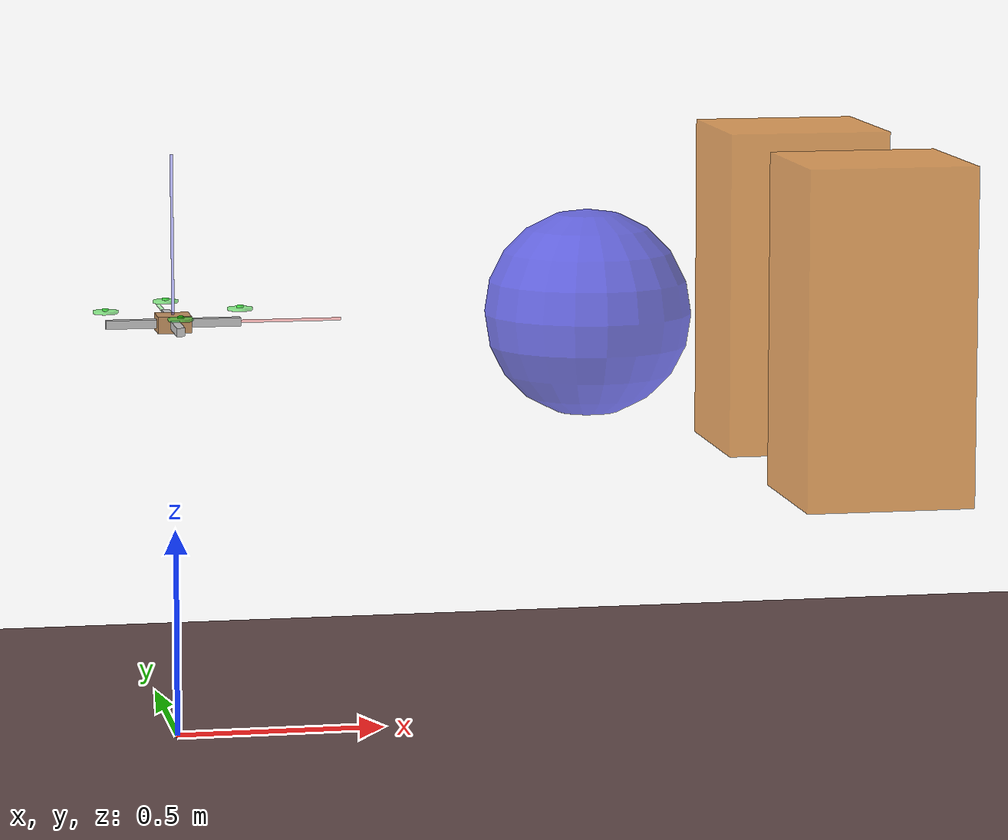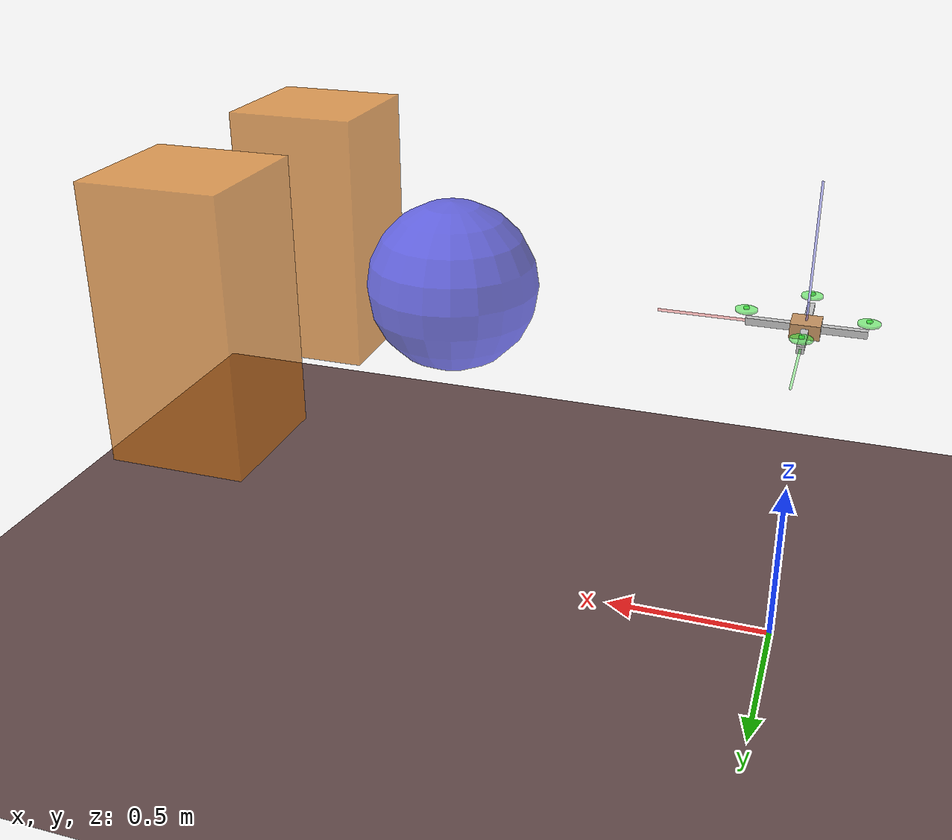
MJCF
<mujoco model="drone_3d_free_obs">
  <compiler angle="degree" inertiafromgeom="true" coordinate="local"/>
  <option timestep="0.01" gravity="0 0 -9.81" density="1" viscosity="1e-5" integrator="RK4"/>

  <default>
    <joint damping="0.02" stiffness="0.001" limited="false"/>
    <geom condim="3" density="200" friction="1 0.5 0.5" margin="0.01" rgba="0.8 0.6 0.4 1"/>
  </default>

  <asset>
    <texture builtin="gradient" type="skybox" height="100" width="100" rgb1="1 1 1" rgb2="0.6 0.8 1"/>
    <texture name="texplane" builtin="checker" height="100" width="100" rgb1="0.7 0.7 0.7" rgb2="0.9 0.9 0.9" type="2d"/>
    <material name="MatPlane" reflectance="0.3" shininess="1" specular="0.5" texrepeat="5 5" texture="texplane"/>
    <material name="MatDrone" specular="0.5" shininess="1" rgba="0.8 0.2 0.2 1"/>
  </asset>

  <worldbody>
    <light cutoff="100" diffuse="1 1 1" dir="-0 0 -1.3" directional="true" exponent="1"
           pos="0 0 1.3" specular=".1 .1 .1"/>
    <geom material="MatPlane" name="floor" pos="0 0 0" rgba="0.4 0.3 0.3 1" size="5 5 0.2" type="plane"/>

    <!-- Obstáculos (solo visuales) -->
    <!-- Esfera -->
    <geom name="obs_sphere_0" type="sphere" pos="1.0 0.0 1.0" size="0.25"
          rgba="0.2 0.2 0.9 0.7" contype="0" conaffinity="0"/>

    <!-- Caja derecha -->
    <geom name="obs_box_0" type="box" pos="1.6 0.4 1.0" size="0.20 0.20 0.40"
          rgba="0.9 0.5 0.1 0.7" contype="0" conaffinity="0"/>

    <!-- Caja izquierda -->
    <geom name="obs_box_1" type="box" pos="1.6 -0.4 1.0" size="0.20 0.20 0.40"
          rgba="0.9 0.5 0.1 0.7" contype="0" conaffinity="0"/>

    <!-- 🚁 DRON -->
    <body name="drone_3d" pos="0 0 1.0">
      <joint name="drone_free" type="free"/>

      <geom name="drone_body" type="box" size="0.04 0.04 0.02" material="MatDrone"
            mass="0.30" contype="0" conaffinity="0"/>

      <!-- Site en el centro del cuerpo para aplicar wrench (u1,u2,u3,u4) -->
      <site name="com_site" pos="0 0 0" size="0.005" rgba="1 0 0 1"/>

      <geom name="arm_x_pos" type="box" pos=" 0.10 0 0" size="0.06 0.01 0.01" rgba="0.8 0.8 0.8 1" mass="0.02"/>
      <geom name="arm_x_neg" type="box" pos="-0.10 0 0" size="0.06 0.01 0.01" rgba="0.8 0.8 0.8 1" mass="0.02"/>
      <geom name="arm_y_pos" type="box" pos="0  0.10 0" size="0.01 0.06 0.01" rgba="0.8 0.8 0.8 1" mass="0.02"/>
      <geom name="arm_y_neg" type="box" pos="0 -0.10 0" size="0.01 0.06 0.01" rgba="0.8 0.8 0.8 1" mass="0.02"/>

      <body name="prop0" pos=" 0.16  0.00 0.03">
        <geom type="cylinder" size="0.03 0.003" rgba="0.3 1 0.3 0.6"/>
        <site name="motor0" pos="0 0 0.003" size="0.008" rgba="0 1 0 0.7" type="cylinder"/>
      </body>
      <body name="prop1" pos="-0.16  0.00 0.03">
        <geom type="cylinder" size="0.03 0.003" rgba="0.3 1 0.3 0.6"/>
        <site name="motor1" pos="0 0 0.003" size="0.008" rgba="0 1 0 0.7" type="cylinder"/>
      </body>
      <body name="prop2" pos=" 0.00  0.16 0.03">
        <geom type="cylinder" size="0.03 0.003" rgba="0.3 1 0.3 0.6"/>
        <site name="motor2" pos="0 0 0.003" size="0.008" rgba="0 1 0 0.7" type="cylinder"/>
      </body>
      <body name="prop3" pos=" 0.00 -0.16 0.03">
        <geom type="cylinder" size="0.03 0.003" rgba="0.3 1 0.3 0.6"/>
        <site name="motor3" pos="0 0 0.003" size="0.008" rgba="0 1 0 0.7" type="cylinder"/>
      </body>

      <site name="x_axis" type="box" pos="0.20 0 0" size="0.20 0.003 0.003" rgba="1 0 0 0.3"/>
      <site name="y_axis" type="box" pos="0 0.20 0" size="0.003 0.20 0.003" rgba="0 1 0 0.3"/>
      <site name="z_axis" type="box" pos="0 0 0.20" size="0.003 0.003 0.20" rgba="0 0 1 0.3"/>
    </body>

    <!-- Flecha visual (mocap) para mostrar F_des -->
    <body name="force_arrow_1" mocap="true" pos="0 0 0">
      <geom name="force_geom_1"
            type="capsule"
            size="0.01 0.10"
            rgba="1 0 0 1"
            contype="0"
            conaffinity="0"
            mass="0"/>
    </body>

  </worldbody>

  <actuator>
      <!-- u1: thrust total a lo largo de +z del cuerpo (en com_site) -->
      <general name="u1_thrust" site="com_site"
                ctrllimited="true" ctrlrange="0 10"
                gear="0 0 1  0 0 0"/>

      <!-- u2,u3,u4: torques en el frame del cuerpo -->
      <general name="u2_tau_x" site="com_site"
                ctrllimited="true" ctrlrange="-1 1"
                gear="0 0 0  1 0 0"/>

      <general name="u3_tau_y" site="com_site"
                ctrllimited="true" ctrlrange="-1 1"
                gear="0 0 0  0 1 0"/>

      <general name="u4_tau_z" site="com_site"
                ctrllimited="true" ctrlrange="-0.2 0.2"
                gear="0 0 0  0 0 1"/>
  </actuator>

  <sensor>
    <framepos    name="pos_drone"     objtype="body" objname="drone_3d"/>
    <framequat   name="quat_drone"    objtype="body" objname="drone_3d"/>
    <framelinvel name="linvel_drone"  objtype="body" objname="drone_3d"/>
    <frameangvel name="rotvel_drone"  objtype="body" objname="drone_3d"/>
  </sensor>
</mujoco>
